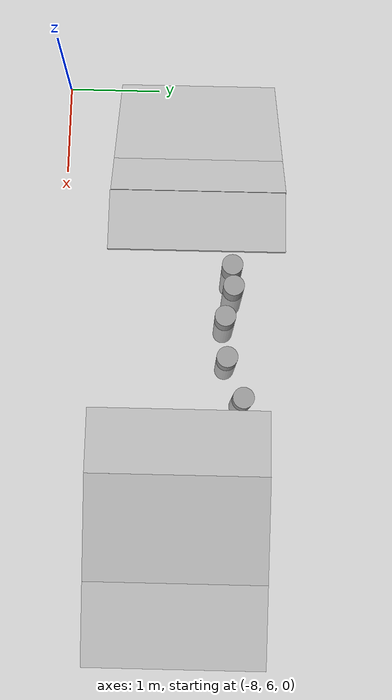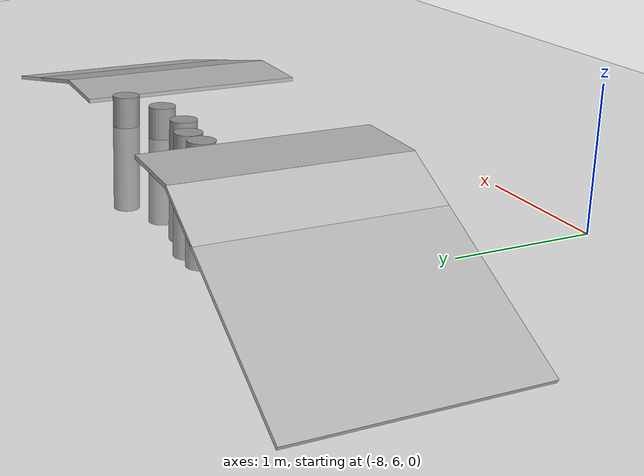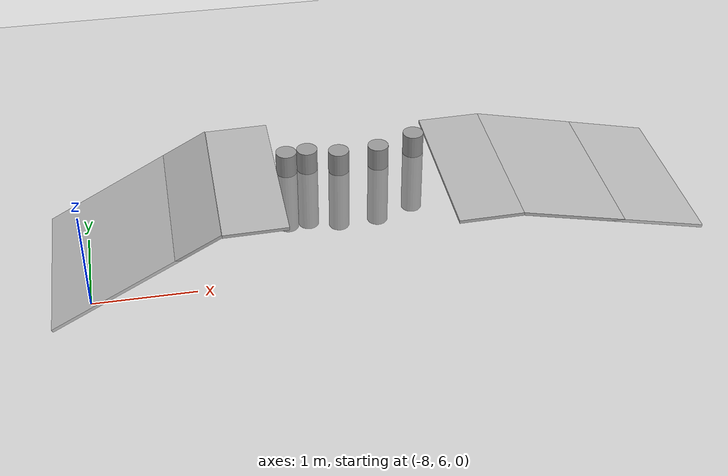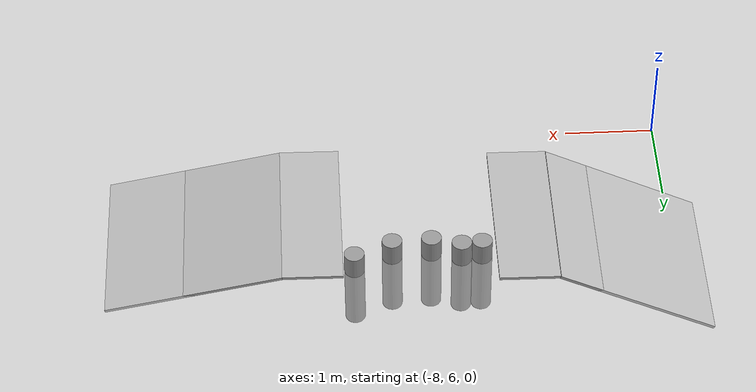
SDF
<sdf version="1.7">
 <world name="default">
  <model name="ground_plane">
   <static>1</static>
   <link name="link">
    <collision name="collision">
     <geometry><plane><normal>0 0 1</normal><size>100 100</size></plane></geometry>
     <surface>
      <contact><collide_bitmask>65535</collide_bitmask></contact>
      <friction><ode><mu>100</mu><mu2>50</mu2></ode></friction>
     </surface>
    </collision>
    <visual name="visual">
     <cast_shadows>0</cast_shadows>
     <geometry><plane><normal>0 0 1</normal><size>100 100</size></plane></geometry>
     <material>
      <script><uri>file://media/materials/scripts/gazebo.material</uri><name>Gazebo/Grey</name></script>
     </material>
    </visual>
   </link>
  </model>
  <model name="box_clone_clone_3">
   <static>1</static>
   <pose>-2.71446 7.30395 0 0 0.212574 0</pose>
   <link name="link">
    <collision name="collision"><geometry><box><size>1.99786 1.89779 0.033476</size></box></geometry></collision>
    <visual name="visual"><geometry><box><size>1.99786 1.89779 0.033476</size></box></geometry></visual>
   </link>
  </model>
  <model name="box_clone_clone_1_clone_clone_2">
   <static>1</static>
   <pose>-4.0201 7.30273 0.204894 0 -0.017033 0</pose>
   <link name="link">
    <collision name="collision"><geometry><box><size>0.666252 1.89779 0.033476</size></box></geometry></collision>
    <visual name="visual"><geometry><box><size>0.666252 1.89779 0.033476</size></box></geometry></visual>
   </link>
  </model>
  <model name="unit_cylinder_clone_3_clone_clone_0">
   <link name="link">
    <inertial>
     <mass>0.0497635</mass>
     <inertia>
      <ixx>0.00430173</ixx>
      <ixy>0</ixy>
      <ixz>0</ixz>
      <iyy>0.00430173</iyy>
      <iyz>0</iyz>
      <izz>0.00030955</izz>
     </inertia>
    </inertial>
    <pose>0.001965 -0.009653 -0.499784 1.55252 -0 0</pose>
    <visual name="visual">
     <geometry><cylinder><radius>0.111539</radius><length>1</length></cylinder></geometry>
     <material>
      <script><name>Gazebo/Grey</name><uri>file://media/materials/scripts/gazebo.material</uri></script>
      <shader type="pixel"/>
     </material>
    </visual>
    <collision name="collision">
     <geometry><cylinder><radius>0.111539</radius><length>1</length></cylinder></geometry>
     <surface>
      <friction>
       <ode><mu>1</mu><mu2>1</mu2><fdir1>0 0 0</fdir1><slip1>0</slip1><slip2>0</slip2></ode>
       <torsional>
        <coefficient>1</coefficient>
        <patch_radius>0</patch_radius>
        <surface_radius>0</surface_radius>
        <use_patch_radius>1</use_patch_radius>
        <ode><slip>0</slip></ode>
       </torsional>
      </friction>
      <bounce><restitution_coefficient>0</restitution_coefficient><threshold>1e+06</threshold></bounce>
      <contact>
       <collide_without_contact>0</collide_without_contact>
       <collide_without_contact_bitmask>1</collide_without_contact_bitmask>
       <collide_bitmask>1</collide_bitmask>
       <ode>
        <soft_cfm>0</soft_cfm>
        <soft_erp>0.2</soft_erp>
        <kp>1e+13</kp>
        <kd>1</kd>
        <max_vel>0.01</max_vel>
        <min_depth>0</min_depth>
       </ode>
       <bullet>
        <split_impulse>1</split_impulse>
        <split_impulse_penetration_threshold>-0.01</split_impulse_penetration_threshold>
        <soft_cfm>0</soft_cfm>
        <soft_erp>0.2</soft_erp>
        <kp>1e+13</kp>
        <kd>1</kd>
       </bullet>
      </contact>
     </surface>
    </collision>
   </link>
   <static>1</static>
   <pose>-4.90346 7.30763 -0.259905 1.61465 -0 0</pose>
  </model>
  <model name="unit_cylinder_clone_3_clone_clone_4">
   <link name="link">
    <inertial>
     <mass>0.0497635</mass>
     <inertia>
      <ixx>0.00430173</ixx>
      <ixy>0</ixy>
      <ixz>0</ixz>
      <iyy>0.00430173</iyy>
      <iyz>0</iyz>
      <izz>0.00030955</izz>
     </inertia>
    </inertial>
    <pose>0.001965 -0.009653 -0.499784 1.55252 -0 0</pose>
    <visual name="visual">
     <geometry><cylinder><radius>0.111539</radius><length>1</length></cylinder></geometry>
     <material>
      <script><name>Gazebo/Grey</name><uri>file://media/materials/scripts/gazebo.material</uri></script>
      <shader type="pixel"/>
     </material>
    </visual>
    <collision name="collision">
     <geometry><cylinder><radius>0.111539</radius><length>1</length></cylinder></geometry>
     <surface>
      <friction>
       <ode><mu>1</mu><mu2>1</mu2><fdir1>0 0 0</fdir1><slip1>0</slip1><slip2>0</slip2></ode>
       <torsional>
        <coefficient>1</coefficient>
        <patch_radius>0</patch_radius>
        <surface_radius>0</surface_radius>
        <use_patch_radius>1</use_patch_radius>
        <ode><slip>0</slip></ode>
       </torsional>
      </friction>
      <bounce><restitution_coefficient>0</restitution_coefficient><threshold>1e+06</threshold></bounce>
      <contact>
       <collide_without_contact>0</collide_without_contact>
       <collide_without_contact_bitmask>1</collide_without_contact_bitmask>
       <collide_bitmask>1</collide_bitmask>
       <ode>
        <soft_cfm>0</soft_cfm>
        <soft_erp>0.2</soft_erp>
        <kp>1e+13</kp>
        <kd>1</kd>
        <max_vel>0.01</max_vel>
        <min_depth>0</min_depth>
       </ode>
       <bullet>
        <split_impulse>1</split_impulse>
        <split_impulse_penetration_threshold>-0.01</split_impulse_penetration_threshold>
        <soft_cfm>0</soft_cfm>
        <soft_erp>0.2</soft_erp>
        <kp>1e+13</kp>
        <kd>1</kd>
       </bullet>
      </contact>
     </surface>
    </collision>
   </link>
   <static>1</static>
   <pose>-5.33829 7.28402 -0.259905 1.61465 -0 0</pose>
  </model>
  <model name="unit_cylinder_clone_3_clone_clone_8">
   <link name="link">
    <inertial>
     <mass>0.0497635</mass>
     <inertia>
      <ixx>0.00430173</ixx>
      <ixy>0</ixy>
      <ixz>0</ixz>
      <iyy>0.00430173</iyy>
      <iyz>0</iyz>
      <izz>0.00030955</izz>
     </inertia>
    </inertial>
    <pose>0.001965 -0.009653 -0.499784 1.55252 -0 0</pose>
    <visual name="visual">
     <geometry><cylinder><radius>0.111539</radius><length>1</length></cylinder></geometry>
     <material>
      <script><name>Gazebo/Grey</name><uri>file://media/materials/scripts/gazebo.material</uri></script>
      <shader type="pixel"/>
     </material>
    </visual>
    <collision name="collision">
     <geometry><cylinder><radius>0.111539</radius><length>1</length></cylinder></geometry>
     <surface>
      <friction>
       <ode><mu>1</mu><mu2>1</mu2><fdir1>0 0 0</fdir1><slip1>0</slip1><slip2>0</slip2></ode>
       <torsional>
        <coefficient>1</coefficient>
        <patch_radius>0</patch_radius>
        <surface_radius>0</surface_radius>
        <use_patch_radius>1</use_patch_radius>
        <ode><slip>0</slip></ode>
       </torsional>
      </friction>
      <bounce><restitution_coefficient>0</restitution_coefficient><threshold>1e+06</threshold></bounce>
      <contact>
       <collide_without_contact>0</collide_without_contact>
       <collide_without_contact_bitmask>1</collide_without_contact_bitmask>
       <collide_bitmask>1</collide_bitmask>
       <ode>
        <soft_cfm>0</soft_cfm>
        <soft_erp>0.2</soft_erp>
        <kp>1e+13</kp>
        <kd>1</kd>
        <max_vel>0.01</max_vel>
        <min_depth>0</min_depth>
       </ode>
       <bullet>
        <split_impulse>1</split_impulse>
        <split_impulse_penetration_threshold>-0.01</split_impulse_penetration_threshold>
        <soft_cfm>0</soft_cfm>
        <soft_erp>0.2</soft_erp>
        <kp>1e+13</kp>
        <kd>1</kd>
       </bullet>
      </contact>
     </surface>
    </collision>
   </link>
   <static>1</static>
   <pose>-5.66805 7.36995 -0.259905 1.61465 -0 0</pose>
  </model>
  <model name="unit_cylinder_clone_3_clone_clone_15">
   <link name="link">
    <inertial>
     <mass>0.0497635</mass>
     <inertia>
      <ixx>0.00430173</ixx>
      <ixy>0</ixy>
      <ixz>0</ixz>
      <iyy>0.00430173</iyy>
      <iyz>0</iyz>
      <izz>0.00030955</izz>
     </inertia>
    </inertial>
    <pose>0.001965 -0.009653 -0.499784 1.55252 -0 0</pose>
    <visual name="visual">
     <geometry><cylinder><radius>0.111539</radius><length>1</length></cylinder></geometry>
     <material>
      <script><name>Gazebo/Grey</name><uri>file://media/materials/scripts/gazebo.material</uri></script>
      <shader type="pixel"/>
     </material>
    </visual>
    <collision name="collision">
     <geometry><cylinder><radius>0.111539</radius><length>1</length></cylinder></geometry>
     <surface>
      <friction>
       <ode><mu>1</mu><mu2>1</mu2><fdir1>0 0 0</fdir1><slip1>0</slip1><slip2>0</slip2></ode>
       <torsional>
        <coefficient>1</coefficient>
        <patch_radius>0</patch_radius>
        <surface_radius>0</surface_radius>
        <use_patch_radius>1</use_patch_radius>
        <ode><slip>0</slip></ode>
       </torsional>
      </friction>
      <bounce><restitution_coefficient>0</restitution_coefficient><threshold>1e+06</threshold></bounce>
      <contact>
       <collide_without_contact>0</collide_without_contact>
       <collide_without_contact_bitmask>1</collide_without_contact_bitmask>
       <collide_bitmask>1</collide_bitmask>
       <ode>
        <soft_cfm>0</soft_cfm>
        <soft_erp>0.2</soft_erp>
        <kp>1e+13</kp>
        <kd>1</kd>
        <max_vel>0.01</max_vel>
        <min_depth>0</min_depth>
       </ode>
       <bullet>
        <split_impulse>1</split_impulse>
        <split_impulse_penetration_threshold>-0.01</split_impulse_penetration_threshold>
        <soft_cfm>0</soft_cfm>
        <soft_erp>0.2</soft_erp>
        <kp>1e+13</kp>
        <kd>1</kd>
       </bullet>
      </contact>
     </surface>
    </collision>
   </link>
   <static>1</static>
   <pose>-5.89474 7.35287 -0.259905 1.61465 -0 0</pose>
  </model>
  <model name="box_clone_clone_1_clone_clone_2_clone">
   <static>1</static>
   <pose>-6.3707 7.45436 0.234508 0 -0.017033 0</pose>
   <link name="link">
    <collision name="collision"><geometry><box><size>0.666252 1.89779 0.033476</size></box></geometry></collision>
    <visual name="visual"><geometry><box><size>0.666252 1.89779 0.033476</size></box></geometry></visual>
   </link>
  </model>
  <model name="box_clone_clone_3_clone">
   <static>1</static>
   <pose>-7.58094 7.46128 -0.240054 0 -0.492052 0</pose>
   <link name="link">
    <collision name="collision"><geometry><box><size>1.99786 1.89779 0.033476</size></box></geometry></collision>
    <visual name="visual"><geometry><box><size>1.99786 1.89779 0.033476</size></box></geometry></visual>
   </link>
  </model>
  <model name="unit_cylinder_clone_3_clone_clone_1_clone_1">
   <link name="link">
    <inertial>
     <mass>0.0497635</mass>
     <inertia>
      <ixx>0.00430173</ixx>
      <ixy>0</ixy>
      <ixz>0</ixz>
      <iyy>0.00430173</iyy>
      <iyz>0</iyz>
      <izz>0.00030955</izz>
     </inertia>
    </inertial>
    <pose>0.001965 -0.009653 -0.499784 1.55252 -0 0</pose>
    <visual name="visual">
     <geometry><cylinder><radius>0.111539</radius><length>1</length></cylinder></geometry>
     <material>
      <script><name>Gazebo/Grey</name><uri>file://media/materials/scripts/gazebo.material</uri></script>
      <shader type="pixel"/>
     </material>
    </visual>
    <collision name="collision">
     <geometry><cylinder><radius>0.111539</radius><length>1</length></cylinder></geometry>
     <surface>
      <friction>
       <ode><mu>1</mu><mu2>1</mu2><fdir1>0 0 0</fdir1><slip1>0</slip1><slip2>0</slip2></ode>
       <torsional>
        <coefficient>1</coefficient>
        <patch_radius>0</patch_radius>
        <surface_radius>0</surface_radius>
        <use_patch_radius>1</use_patch_radius>
        <ode><slip>0</slip></ode>
       </torsional>
      </friction>
      <bounce><restitution_coefficient>0</restitution_coefficient><threshold>1e+06</threshold></bounce>
      <contact>
       <collide_without_contact>0</collide_without_contact>
       <collide_without_contact_bitmask>1</collide_without_contact_bitmask>
       <collide_bitmask>1</collide_bitmask>
       <ode>
        <soft_cfm>0</soft_cfm>
        <soft_erp>0.2</soft_erp>
        <kp>1e+13</kp>
        <kd>1</kd>
        <max_vel>0.01</max_vel>
        <min_depth>0</min_depth>
       </ode>
       <bullet>
        <split_impulse>1</split_impulse>
        <split_impulse_penetration_threshold>-0.01</split_impulse_penetration_threshold>
        <soft_cfm>0</soft_cfm>
        <soft_erp>0.2</soft_erp>
        <kp>1e+13</kp>
        <kd>1</kd>
       </bullet>
      </contact>
     </surface>
    </collision>
   </link>
   <static>1</static>
   <pose>-4.48217 7.47947 -0.259905 1.61465 -0 0</pose>
  </model>
 </world>
</sdf>
